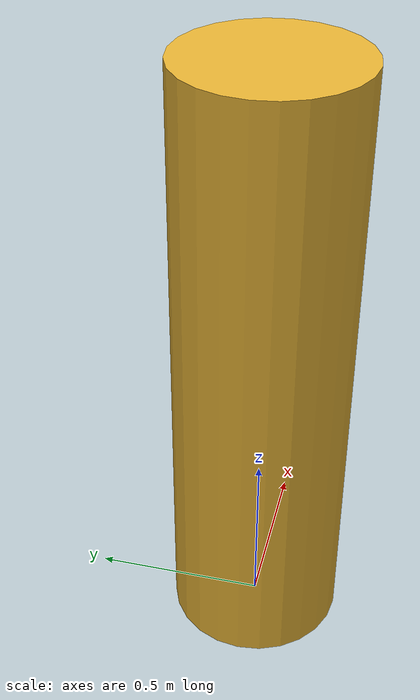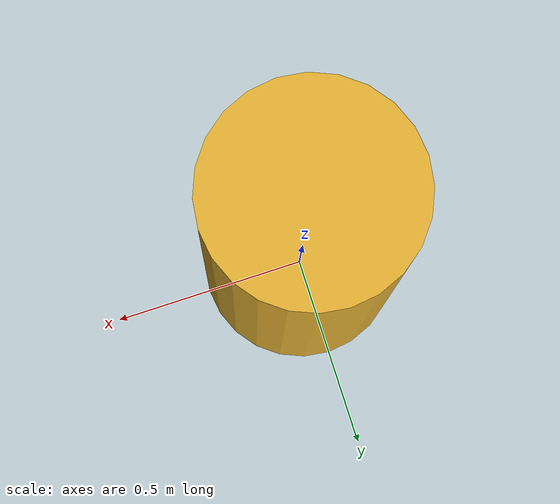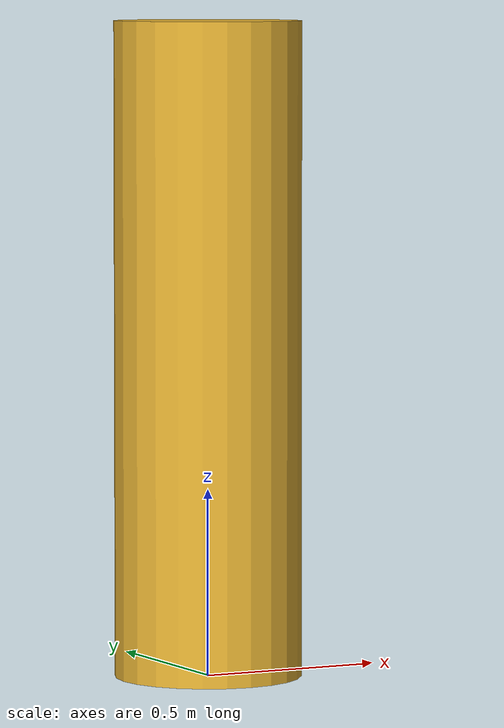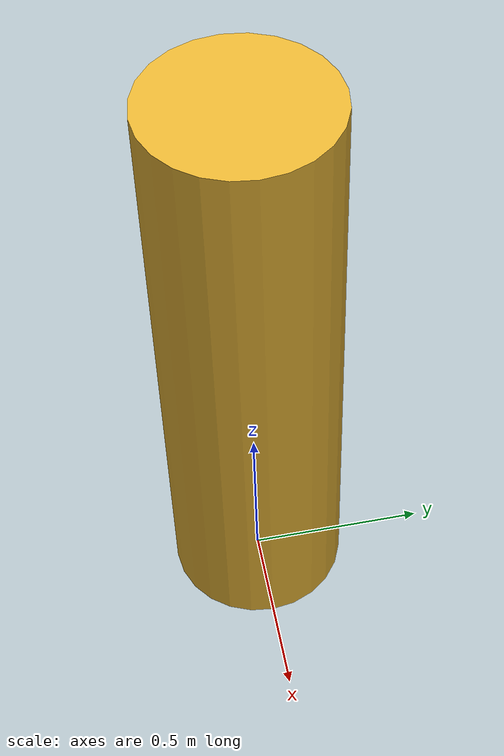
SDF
<?xml version="1.0"?>
<sdf version="1.9">
  <model name="human_dummy">
    <static>false</static>
    <link name="body">
      <pose>0 0 0.875 0 0 0</pose>

      <inertial>
        <mass>70.0</mass>
        <inertia>
          <ixx>18.0</ixx>
          <ixy>0</ixy>
          <ixz>0</ixz>
          <iyy>18.0</iyy>
          <iyz>0</iyz>
          <izz>2.2</izz>
        </inertia>
      </inertial>

      <collision name="body_collision">
        <geometry>
          <cylinder>
            <radius>0.25</radius>
            <length>1.75</length>
          </cylinder>
        </geometry>
      </collision>

      <visual name="body_visual">
        <geometry>
          <cylinder>
            <radius>0.25</radius>
            <length>1.75</length>
          </cylinder>
        </geometry>
        <material>
          <ambient>0.9 0.7 0.2 0.0</ambient>
          <diffuse>0.9 0.7 0.2 0.0</diffuse>
          <specular>0.1 0.1 0.1 1</specular>
        </material>
      </visual>
    </link>
  </model>
</sdf>
